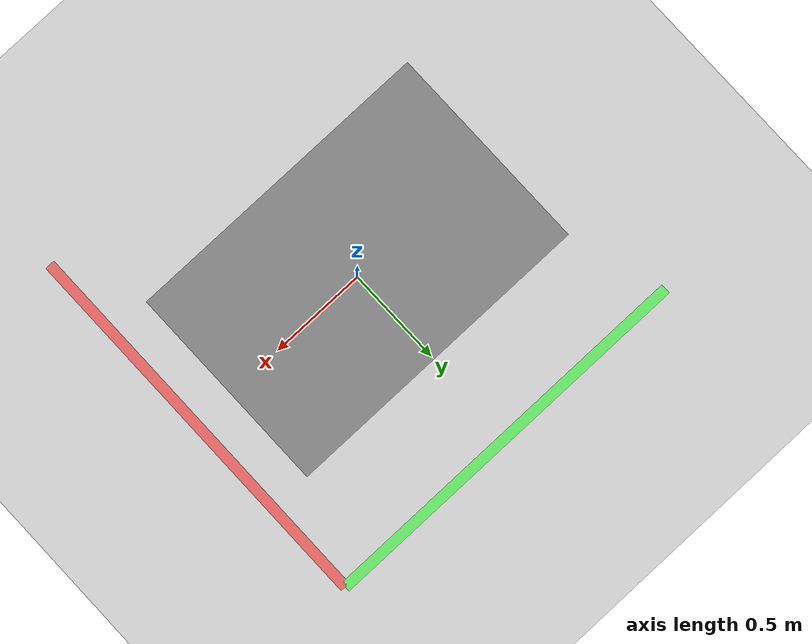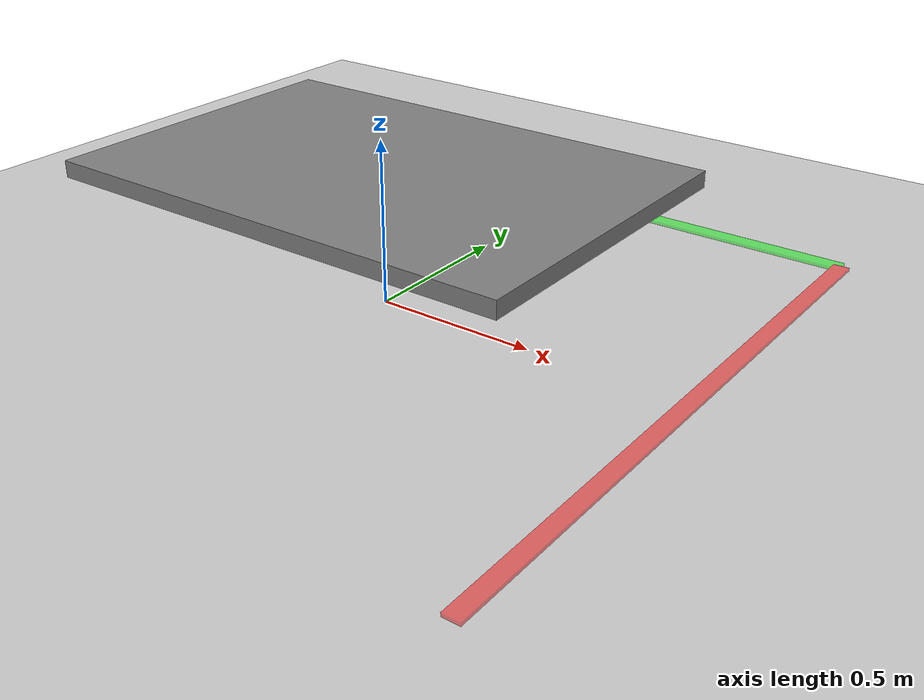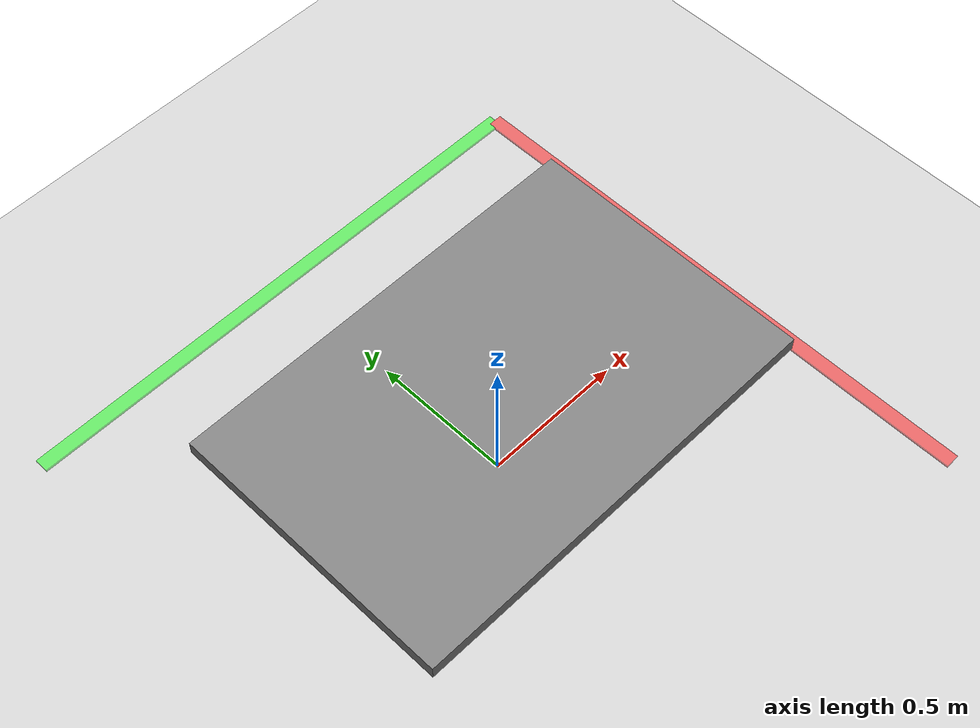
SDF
<?xml version="1.0" ?>
<!--
  Dual Arm Synchronization World
  Custom Gazebo world for dual arm robot setup with optimized physics
-->
<sdf version="1.9">
  <world name="dual_arm_world">

    <!-- Physics settings optimized for robot simulation -->
    <physics name="default_physics" default="true" type="ode">
      <max_step_size>0.001</max_step_size>
      <real_time_factor>1.0</real_time_factor>
      <real_time_update_rate>1000</real_time_update_rate>
    </physics>

    <!-- Plugin for setting physics parameters -->
    <plugin
      filename="gz-sim-physics-system"
      name="gz::sim::systems::Physics">
    </plugin>
    <plugin
      filename="gz-sim-user-commands-system"
      name="gz::sim::systems::UserCommands">
    </plugin>
    <plugin
      filename="gz-sim-scene-broadcaster-system"
      name="gz::sim::systems::SceneBroadcaster">
    </plugin>

    <!-- Lighting -->
    <light name="sun" type="directional">
      <cast_shadows>true</cast_shadows>
      <pose>0 0 10 0 0 0</pose>
      <diffuse>0.8 0.8 0.8 1</diffuse>
      <specular>0.2 0.2 0.2 1</specular>
      <attenuation>
        <range>1000</range>
        <constant>0.9</constant>
        <linear>0.01</linear>
        <quadratic>0.001</quadratic>
      </attenuation>
      <direction>-0.5 0.1 -0.9</direction>
    </light>

    <!-- Additional ambient lighting -->
    <light name="ambient_light" type="point">
      <pose>0 0 3 0 0 0</pose>
      <diffuse>0.4 0.4 0.4 1</diffuse>
      <specular>0.1 0.1 0.1 1</specular>
      <attenuation>
        <range>20</range>
        <constant>0.5</constant>
        <linear>0.01</linear>
        <quadratic>0.001</quadratic>
      </attenuation>
      <cast_shadows>false</cast_shadows>
    </light>

    <!-- Ground plane -->
    <model name="ground_plane">
      <static>true</static>
      <link name="link">
        <collision name="collision">
          <geometry>
            <plane>
              <normal>0 0 1</normal>
              <size>100 100</size>
            </plane>
          </geometry>
        </collision>
        <visual name="visual">
          <geometry>
            <plane>
              <normal>0 0 1</normal>
              <size>100 100</size>
            </plane>
          </geometry>
          <material>
            <ambient>0.8 0.8 0.8 1</ambient>
            <diffuse>0.8 0.8 0.8 1</diffuse>
            <specular>0.1 0.1 0.1 1</specular>
          </material>
        </visual>
      </link>
    </model>

    <!-- Work table between robots -->
    <model name="work_table">
      <static>true</static>
      <pose>0 0 0.4 0 0 0</pose>
      <link name="table_link">
        <collision name="collision">
          <geometry>
            <box>
              <size>1.5 1.0 0.05</size>
            </box>
          </geometry>
        </collision>
        <visual name="visual">
          <geometry>
            <box>
              <size>1.5 1.0 0.05</size>
            </box>
          </geometry>
          <material>
            <ambient>0.5 0.5 0.5 1</ambient>
            <diffuse>0.5 0.5 0.5 1</diffuse>
            <specular>0.3 0.3 0.3 1</specular>
          </material>
        </visual>
      </link>
    </model>

    <!-- Grid markers for spatial reference -->
    <model name="grid_marker_x">
      <static>true</static>
      <pose>1 0 0.01 0 0 0</pose>
      <link name="link">
        <visual name="visual">
          <geometry>
            <box>
              <size>0.05 2.0 0.01</size>
            </box>
          </geometry>
          <material>
            <ambient>1 0 0 0.5</ambient>
            <diffuse>1 0 0 0.5</diffuse>
          </material>
        </visual>
      </link>
    </model>

    <model name="grid_marker_y">
      <static>true</static>
      <pose>0 1 0.01 0 0 0</pose>
      <link name="link">
        <visual name="visual">
          <geometry>
            <box>
              <size>2.0 0.05 0.01</size>
            </box>
          </geometry>
          <material>
            <ambient>0 1 0 0.5</ambient>
            <diffuse>0 1 0 0.5</diffuse>
          </material>
        </visual>
      </link>
    </model>

  </world>
</sdf>
